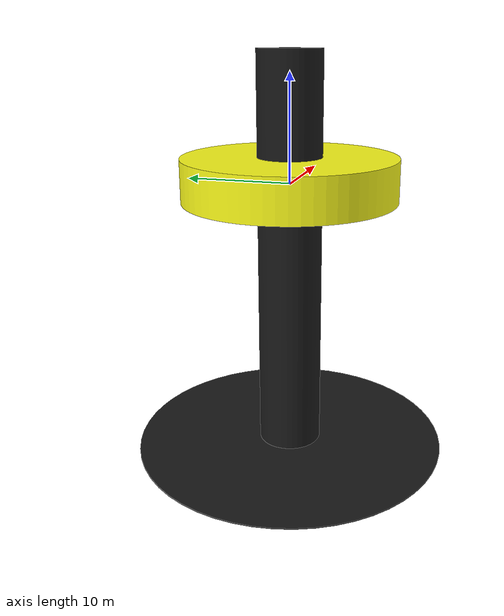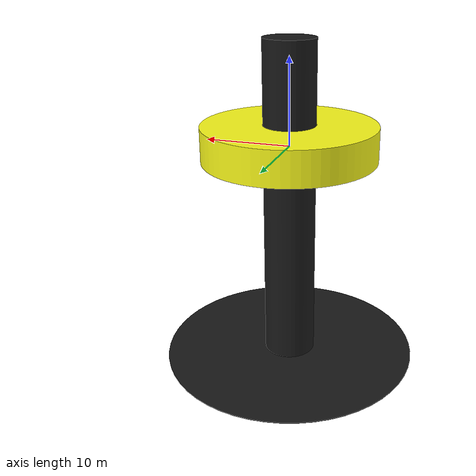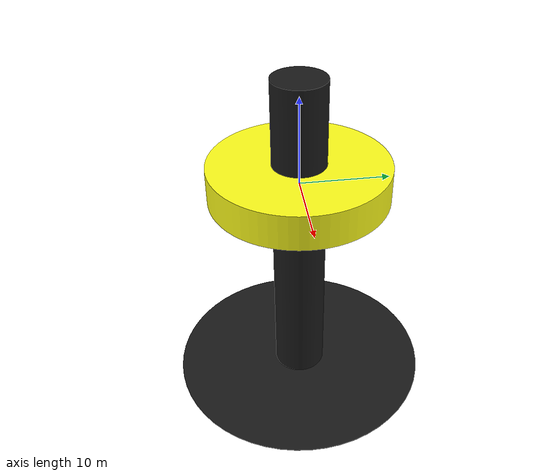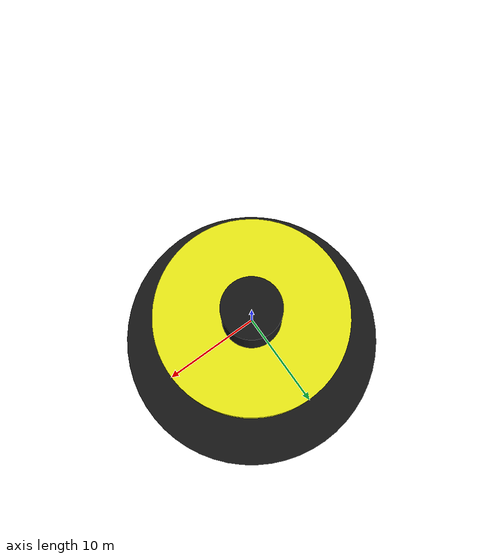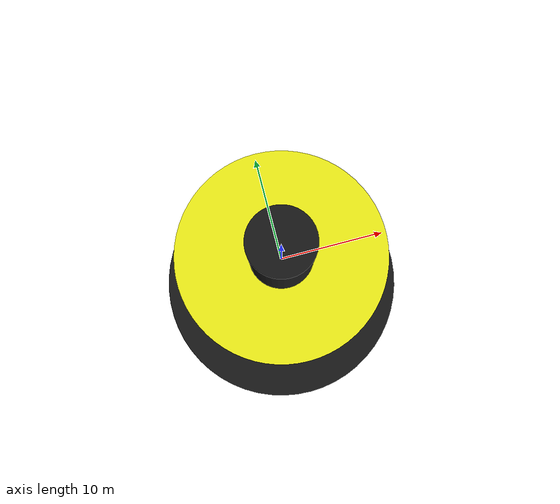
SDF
<sdf version="1.6">
 <world name="waves">
  <physics name="1ms" type="ignore">
   <max_step_size>0.001</max_step_size>
   <real_time_factor>-1</real_time_factor>
  </physics>
  <plugin filename="gz-sim-physics-system" name="gz::sim::systems::Physics"/>
  <plugin filename="gz-sim-sensors-system" name="gz::sim::systems::Sensors">
   <render_engine>ogre2</render_engine>
   <background_color>0.8 0.8 0.8</background_color>
  </plugin>
  <plugin filename="gz-sim-scene-broadcaster-system" name="gz::sim::systems::SceneBroadcaster"/>
  <plugin filename="gz-sim-user-commands-system" name="gz::sim::systems::UserCommands"/>
  <plugin filename="gz-sim-imu-system" name="gz::sim::systems::Imu"/>
  <scene><ambient>1.0 1.0 1.0</ambient><background>0.8 0.8 0.8</background></scene>
  <light type="directional" name="sun">
   <pose>0 0 10 0 0 0</pose>
   <diffuse>0.8 0.8 0.8 1</diffuse>
   <specular>0.6 0.6 0.6 1</specular>
   <direction>-0.5 0.1 -0.9</direction>
  </light>
  <model name="axes">
   <static>1</static>
   <link name="link">
    <visual name="r">
     <cast_shadows>0</cast_shadows>
     <pose>5 0 0.1 0 0 0</pose>
     <geometry><box><size>10 0.01 0.01</size></box></geometry>
     <material>
      <ambient>1 0 0 1</ambient>
      <diffuse>1 0 0 1</diffuse>
      <emissive>1 0 0 1</emissive>
      <specular>0.5 0.5 0.5 1</specular>
     </material>
    </visual>
    <visual name="g">
     <cast_shadows>0</cast_shadows>
     <pose>0 5 0.1 0 0 0</pose>
     <geometry><box><size>0.01 10 0.01</size></box></geometry>
     <material>
      <ambient>0 1 0 1</ambient>
      <diffuse>0 1 0 1</diffuse>
      <emissive>0 1 0 1</emissive>
      <specular>0.5 0.5 0.5 1</specular>
     </material>
    </visual>
    <visual name="b">
     <cast_shadows>0</cast_shadows>
     <pose>0 0 5.1 0 0 0</pose>
     <geometry><box><size>0.01 0.01 10</size></box></geometry>
     <material>
      <ambient>0 0 1 1</ambient>
      <diffuse>0 0 1 1</diffuse>
      <emissive>0 0 1 1</emissive>
      <specular>0.5 0.5 0.5 1</specular>
     </material>
    </visual>
   </link>
  </model>
  <include><uri>model://rm3_wec</uri></include>
 </world>
</sdf>

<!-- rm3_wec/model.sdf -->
<sdf version="1.6">
  <model name="rm3_wec">
    <link name="base_link">
      <pose>0 0 -7 0 0 0</pose>
      <inertial>
        <pose>0 0 -14.29 0 0 0</pose>
        <mass>878300</mass>
        <inertia>
          <ixx>94419615</ixx>
          <ixy>0.0</ixy>
          <ixz>0.0</ixz>
          <iyy>94419615</iyy>
          <iyz>0.0</iyz>
          <izz>28542225</izz>
        </inertia>
      </inertial>
      <collision name="base_collision">
        <pose>0 0 -18.95 0 0 0</pose>
        <geometry>
          <cylinder>
            <radius>15.0</radius>
            <length>0.1</length>
          </cylinder>
        </geometry>
      </collision>
      <collision name="plate_collision">
        <geometry>
          <cylinder>
            <radius>3.0</radius>
            <length>38</length>
          </cylinder>
        </geometry>
      </collision>
      <visual name="mesh_visual">
        <pose>0 0 -10.2 0 0 0</pose>
        <geometry>
          <mesh>
            <uri>models://rm3_wec/meshes/plate.stl</uri>
          </mesh>
        </geometry>
        <material>
          <ambient>0.1 0.1 0.1 1.0</ambient>
          <diffuse>0.1 0.1 0.1 1.0</diffuse>
          <specular>0.01 0.01 0.01 1.0</specular>
        </material>
      </visual>
    </link>
    <joint name="base_joint" type="revolute">
      <child>base_link</child>
      <parent>world</parent>
      <axis>
        <xyz>0 0 1</xyz>
        <limit>
          <lower>0</lower>
          <upper>0</upper>
        </limit>
        <dynamics>
          <damping>1.0</damping>
        </dynamics>
      </axis>
    </joint>
    <link name="float_link">
      <pose>0 0 0 0 0 0</pose>
      <inertial>
        <mass>727010</mass>
        <inertia>
          <ixx>20907301</ixx>
          <ixy>0.0</ixy>
          <ixz>0.0</ixz>
          <iyy>21306091</iyy>
          <iyz>0.0</iyz>
          <izz>37085481</izz>
        </inertia>
      </inertial>
      <collision name="collision">
        <geometry>
          <cylinder>
            <radius>10.0</radius>
            <length>5</length>
          </cylinder>
        </geometry>
      </collision>
      <visual name="visual">
        <pose>0 0 -0.225 0 0 0</pose>
        <geometry>
          <mesh>
            <uri>models://rm3_wec/meshes/float.stl</uri>
          </mesh>
        </geometry>
        <material>
          <ambient>1 1 0.1 1.0</ambient>
          <diffuse>1 1 0.1 1.0</diffuse>
          <specular>0.01 0.01 0.01 1.0</specular>
        </material>
      </visual>
    </link>
    <joint name="float_joint" type="prismatic">
      <child>float_link</child>
      <parent>base_link</parent>
      <axis>
        <xyz>0 0 1</xyz>
        <limit>
          <lower>-10</lower>
          <upper>10</upper>
        </limit>
        <dynamics>
          <damping>0.1</damping>
        </dynamics>
      </axis>
    </joint>

    <!-- plugins -->
    <plugin filename="gz-sim-joint-state-publisher-system"
        name="gz::sim::systems::JointStatePublisher">
    </plugin>
    <plugin filename="gz-sim-odometry-publisher-system"
        name="gz::sim::systems::OdometryPublisher">
      <odom_frame>odom</odom_frame>
      <robot_base_frame>base_link</robot_base_frame>
      <odom_publish_frequency>50</odom_publish_frequency>
      <odom_topic>model/rm3_wec/odometry</odom_topic>
      <dimensions>3</dimensions>
    </plugin>
    <plugin filename="gz-sim-pose-publisher-system"
        name="gz::sim::systems::PosePublisher">
      <publish_link_pose>true</publish_link_pose>
      <use_pose_vector_msg>true</use_pose_vector_msg>
      <static_publisher>true</static_publisher>
      <static_update_frequency>1</static_update_frequency>
    </plugin>
    <plugin filename="gz-waves1-hydrodynamics-system"
        name="gz::sim::systems::Hydrodynamics">
      <enable>rm3_wec::float_link</enable>
      <hydrodynamics>
        <damping_on>1</damping_on>
        <viscous_drag_on>1</viscous_drag_on>
        <pressure_drag_on>1</pressure_drag_on>
      </hydrodynamics>
    </plugin>
  </model>
</sdf>
